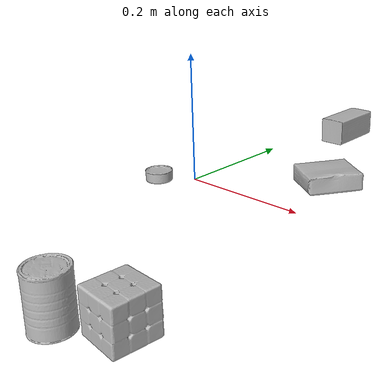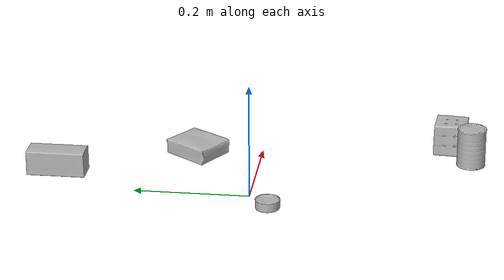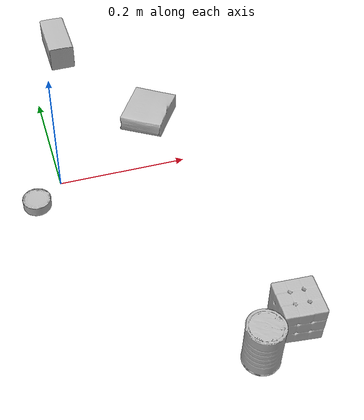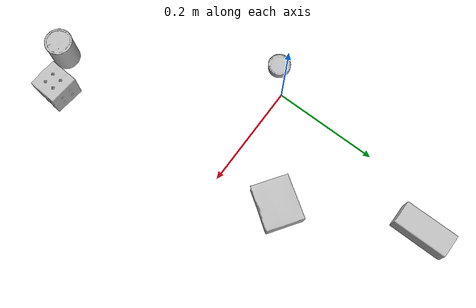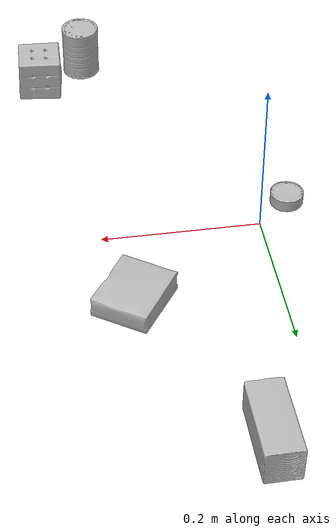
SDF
<sdf version="1.4">
  <world name="default">
    <light name="light1" type="point">
      <pose>0 0 1 0 0 0</pose>
      <diffuse>3 3 3 1</diffuse>
      <specular>3 3 3 1</specular>
    </light>
    <light name="light2" type="point">
      <pose>0 0.5 2 0 0 0</pose>
      <diffuse>1 1 1 1</diffuse>
      <specular>1 1 1 1</specular>
    </light>
    <light name="light3" type="point">
      <pose>0 0.5 2 0 0 0</pose>
      <diffuse>3 3 3 1</diffuse>
      <specular>3 3 3 1</specular>
    </light>
    <scene>
      <ambient>0.7 0.7 0.7</ambient>
    </scene>
    <model name="box1">
      <link name="link_box1">
        <collision name="default">
          <geometry>
            <mesh>
              <uri>model://rubiks_cube/collision_meshes/collision.obj</uri>
              <scale>1.0 1.0 1.0</scale>
            </mesh>
          </geometry>
          <surface>
            <friction>
              <ode>
                <mu>0.5</mu>
                <mu2>0.5</mu2>
              </ode>
            </friction>
          <contact>
        <ode>
            <max_vel>0</max_vel>
            <min_depth>0.0001</min_depth>
            <kp>1e8</kp>
        </ode>
    </contact></surface>
        </collision>
        <visual name="default">
          <geometry>
            <mesh>
              <uri>model://rubiks_cube/visual_meshes/visual.dae</uri>
              <scale>1.0 1.0 1.0</scale>
            </mesh>
          </geometry>
        </visual>
        <inertial>
          <mass>0.1675702929496765</mass>
          <pose>2.6721041649580002e-05 5.2569666877388954e-05 -7.264316082000732e-06 -0.054672410780645164 -0.09813946178663992 -0.034457105846518836</pose>
          <inertia>
            <ixx>9.259384e-05</ixx>
            <iyy>9.2162045e-05</iyy>
            <izz>9.336113e-05</izz>
            <ixy>0</ixy>
            <ixz>0</ixz>
            <iyz>0</iyz>
          </inertia>
        </inertial>
      </link>
      <pose>0.24358084797859192 -0.3368847370147705 0.028678998351097107 -2.113227620863555e-06 5.141162401200902e-07 1.4939117414176306</pose>
    </model>
    <model name="box2">
      <link name="link_box2">
        <collision name="default">
          <geometry>
            <mesh>
              <uri>model://wood_block/collision_meshes/collision.obj</uri>
              <scale>0.5 0.5 0.5</scale>
            </mesh>
          </geometry>
          <surface>
            <friction>
              <ode>
                <mu>0.5</mu>
                <mu2>0.5</mu2>
              </ode>
            </friction>
          <contact>
        <ode>
            <max_vel>0</max_vel>
            <min_depth>0.0001</min_depth>
            <kp>1e8</kp>
        </ode>
    </contact></surface>
        </collision>
        <visual name="default">
          <geometry>
            <mesh>
              <uri>model://wood_block/visual_meshes/visual.dae</uri>
              <scale>0.5 0.5 0.5</scale>
            </mesh>
          </geometry>
        </visual>
        <inertial>
          <mass>0.20594346523284912</mass>
          <pose>-2.9066577553749084e-06 -0.000285404734313488 0.00013204291462898254 -0.05220975528833662 -0.005192695571830849 -0.0068613788586691015</pose>
          <inertia>
            <ixx>6.8895875e-05</ixx>
            <iyy>0.0002176421</iyy>
            <izz>0.00021682802</izz>
            <ixy>0</ixy>
            <ixz>0</ixz>
            <iyz>0</iyz>
          </inertia>
        </inertial>
      </link>
      <pose>0.0619303435087204 0.34832075238227844 0.022629261016845703 -0.005208525565282968 0.005718784839860402 1.575577822772897</pose>
    </model>
    <model name="box3">
      <link name="link_box3">
        <collision name="default">
          <geometry>
            <mesh>
              <uri>model://gelatin_box/collision_meshes/collision.obj</uri>
              <scale>1.0 1.0 1.0</scale>
            </mesh>
          </geometry>
          <surface>
            <friction>
              <ode>
                <mu>0.5</mu>
                <mu2>0.5</mu2>
              </ode>
            </friction>
          <contact>
        <ode>
            <max_vel>0</max_vel>
            <min_depth>0.0001</min_depth>
            <kp>1e8</kp>
        </ode>
    </contact></surface>
        </collision>
        <visual name="default">
          <geometry>
            <mesh>
              <uri>model://gelatin_box/visual_meshes/visual.dae</uri>
              <scale>1.0 1.0 1.0</scale>
            </mesh>
          </geometry>
        </visual>
        <inertial>
          <mass>0.27371785044670105</mass>
          <pose>0.0004319618456065655 0.00011156871914863586 -0.0003640321083366871 -0.0010503717367230932 -0.004755817294347581 0.01644056133308036</pose>
          <inertia>
            <ixx>0.00019322247</ixx>
            <iyy>0.00013801781</iyy>
            <izz>0.00029412765</izz>
            <ixy>0</ixy>
            <ixz>0</ixz>
            <iyz>0</iyz>
          </inertia>
        </inertial>
      </link>
      <pose>0.17455118894577026 0.11521086096763611 0.015168317593634129 0.005597482839027578 -0.007304582216416757 -0.6047572894939072</pose>
    </model>
    <model name="can1">
      <link name="link_can1">
        <collision name="default">
          <geometry>
            <mesh>
              <uri>model://master_chef_can/collision_meshes/collision.obj</uri>
              <scale>0.5 0.5 0.5</scale>
            </mesh>
          </geometry>
          <surface>
            <friction>
              <ode>
                <mu>0.5</mu>
                <mu2>0.5</mu2>
              </ode>
            </friction>
          <contact>
        <ode>
            <max_vel>0</max_vel>
            <min_depth>0.0001</min_depth>
            <kp>1e8</kp>
        </ode>
    </contact></surface>
        </collision>
        <visual name="default">
          <geometry>
            <mesh>
              <uri>model://master_chef_can/visual_meshes/visual.dae</uri>
              <scale>0.5 0.5 0.5</scale>
            </mesh>
          </geometry>
        </visual>
        <inertial>
          <mass>0.18439537286758423</mass>
          <pose>-4.6619643399026245e-05 1.3926847941547749e-07 -5.080040136817843e-05 -0.0017995053130472594 0.0006479450382529565 -0.6102509153361354</pose>
          <inertia>
            <ixx>0.00010822757</ixx>
            <iyy>0.00010743104</iyy>
            <izz>5.9804017e-05</izz>
            <ixy>0</ixy>
            <ixz>0</ixz>
            <iyz>0</iyz>
          </inertia>
        </inertial>
      </link>
      <pose>0.18194051086902618 -0.37391871213912964 0.035301994532346725 -1.4440091861543647e-06 -1.0782293286048827e-06 -0.09246699709773123</pose>
    </model>
    <model name="can2">
      <link name="link_can2">
        <collision name="default">
          <geometry>
            <mesh>
              <uri>model://tuna_fish_can/collision_meshes/collision.obj</uri>
              <scale>0.5 0.5 0.5</scale>
            </mesh>
          </geometry>
          <surface>
            <friction>
              <ode>
                <mu>0.5</mu>
                <mu2>0.5</mu2>
              </ode>
            </friction>
          <contact>
        <ode>
            <max_vel>0</max_vel>
            <min_depth>0.0001</min_depth>
            <kp>1e8</kp>
        </ode>
    </contact></surface>
        </collision>
        <visual name="default">
          <geometry>
            <mesh>
              <uri>model://tuna_fish_can/visual_meshes/visual.dae</uri>
              <scale>0.5 0.5 0.5</scale>
            </mesh>
          </geometry>
        </visual>
        <inertial>
          <mass>0.02825223281979561</mass>
          <pose>-2.0362142095109448e-05 -7.256046956172213e-06 -0.0005269023240543902 -0.0017944745775900258 0.00017164550693472895 0.24055441971144348</pose>
          <inertia>
            <ixx>3.819744e-06</ixx>
            <iyy>3.803824e-06</iyy>
            <izz>6.536128e-06</izz>
            <ixy>0</ixy>
            <ixz>0</ixz>
            <iyz>0</iyz>
          </inertia>
        </inertial>
      </link>
      <pose>-0.042430516332387924 -0.03663860633969307 0.008520000614225864 -1.1275455314493592e-08 -1.1956836562494802e-08 1.4129456879921416</pose>
    </model>
  <physics type="ode">
      <max_contacts>50</max_contacts>
      <ode>
        <solver>
          <type>quick</type>
          <iters>75</iters>
        </solver>
        <constraints>
          <contact_max_correcting_vel>0</contact_max_correcting_vel>
          <contact_surface_layer>0</contact_surface_layer>
        </constraints>
      </ode>
    </physics></world>
</sdf>
